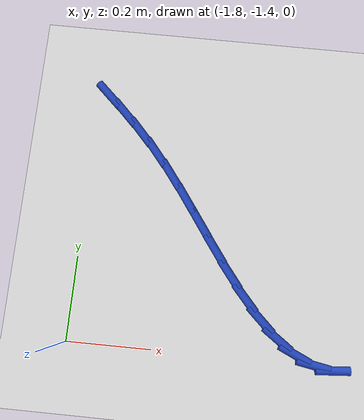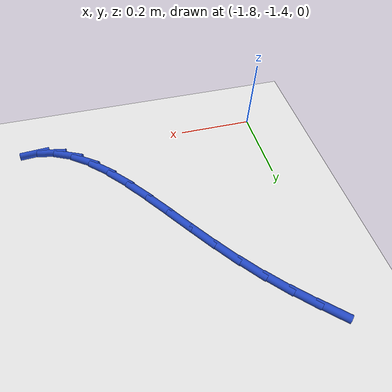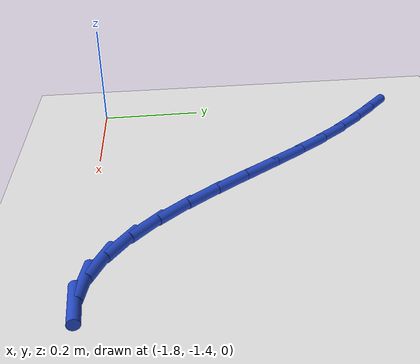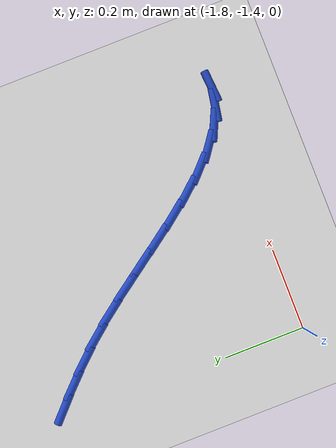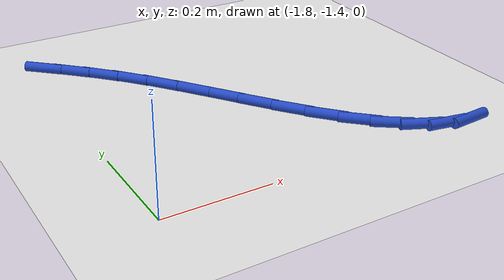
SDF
<sdf version="1.6">
 <world name="default">
  <model name="ground_plane">
   <static>1</static>
   <link name="link">
    <collision name="collision">
     <geometry><plane><normal>0 0 1</normal><size>100 100</size></plane></geometry>
     <surface><friction><ode><mu>100</mu><mu2>50</mu2></ode></friction></surface>
    </collision>
    <visual name="visual">
     <cast_shadows>0</cast_shadows>
     <geometry><plane><normal>0 0 1</normal><size>100 100</size></plane></geometry>
     <material>
      <script><uri>file://media/materials/scripts/gazebo.material</uri><name>Gazebo/WhiteGlow</name></script>
     </material>
    </visual>
   </link>
  </model>
  <model name="line">
   <link name="link_76">
    <pose>-1.772185459357427 -0.793745947863825 0.01 0 1.57 -0.7571948575195712</pose>
    <collision name="collision">
     <geometry><cylinder><radius>0.01</radius><length>0.08</length></cylinder></geometry>
    </collision>
    <visual name="visual">
     <material>
      <script><name>Gazebo/Blue</name><uri>file://media/materials/scripts/gazebo.material</uri></script>
     </material>
     <geometry><cylinder><radius>0.01</radius><length>0.08</length></cylinder></geometry>
    </visual>
   </link>
   <link name="link_77">
    <pose>-1.7273010542508556 -0.8361673864839738 0.01 0 1.57 -0.7916370631608858</pose>
    <collision name="collision">
     <geometry><cylinder><radius>0.01</radius><length>0.08</length></cylinder></geometry>
    </collision>
    <visual name="visual">
     <material>
      <script><name>Gazebo/Blue</name><uri>file://media/materials/scripts/gazebo.material</uri></script>
     </material>
     <geometry><cylinder><radius>0.01</radius><length>0.08</length></cylinder></geometry>
    </visual>
   </link>
   <link name="link_78">
    <pose>-1.6830461759627757 -0.8809779422975261 0.01 0 1.57 -0.8367730005441526</pose>
    <collision name="collision">
     <geometry><cylinder><radius>0.01</radius><length>0.08</length></cylinder></geometry>
    </collision>
    <visual name="visual">
     <material>
      <script><name>Gazebo/Blue</name><uri>file://media/materials/scripts/gazebo.material</uri></script>
     </material>
     <geometry><cylinder><radius>0.01</radius><length>0.08</length></cylinder></geometry>
    </visual>
   </link>
   <link name="link_79">
    <pose>-1.6396136082689707 -0.9291192461638587 0.01 0 1.57 -0.8891111600331657</pose>
    <collision name="collision">
     <geometry><cylinder><radius>0.01</radius><length>0.08</length></cylinder></geometry>
    </collision>
    <visual name="visual">
     <material>
      <script><name>Gazebo/Blue</name><uri>file://media/materials/scripts/gazebo.material</uri></script>
     </material>
     <geometry><cylinder><radius>0.01</radius><length>0.08</length></cylinder></geometry>
    </visual>
   </link>
   <link name="link_80">
    <pose>-1.5971764577105385 -0.9814170198711873 0.01 0 1.57 -0.9307369549955162</pose>
    <collision name="collision">
     <geometry><cylinder><radius>0.01</radius><length>0.08</length></cylinder></geometry>
    </collision>
    <visual name="visual">
     <material>
      <script><name>Gazebo/Blue</name><uri>file://media/materials/scripts/gazebo.material</uri></script>
     </material>
     <geometry><cylinder><radius>0.01</radius><length>0.08</length></cylinder></geometry>
    </visual>
   </link>
   <link name="link_81">
    <pose>-1.5556508629655545 -1.0371833118283136 0.01 0 1.57 -0.9526536617297064</pose>
    <collision name="collision">
     <geometry><cylinder><radius>0.01</radius><length>0.08</length></cylinder></geometry>
    </collision>
    <visual name="visual">
     <material>
      <script><name>Gazebo/Blue</name><uri>file://media/materials/scripts/gazebo.material</uri></script>
     </material>
     <geometry><cylinder><radius>0.01</radius><length>0.08</length></cylinder></geometry>
    </visual>
   </link>
   <link name="link_82">
    <pose>-1.5147727121256147 -1.0946684014307027 0.01 0 1.57 -0.9566198075054231</pose>
    <collision name="collision">
     <geometry><cylinder><radius>0.01</radius><length>0.08</length></cylinder></geometry>
    </collision>
    <visual name="visual">
     <material>
      <script><name>Gazebo/Blue</name><uri>file://media/materials/scripts/gazebo.material</uri></script>
     </material>
     <geometry><cylinder><radius>0.01</radius><length>0.08</length></cylinder></geometry>
    </visual>
   </link>
   <link name="link_83">
    <pose>-1.4742741668783335 -1.152100617630525 0.01 0 1.57 -0.9426491954464307</pose>
    <collision name="collision">
     <geometry><cylinder><radius>0.01</radius><length>0.08</length></cylinder></geometry>
    </collision>
    <visual name="visual">
     <material>
      <script><name>Gazebo/Blue</name><uri>file://media/materials/scripts/gazebo.material</uri></script>
     </material>
     <geometry><cylinder><radius>0.01</radius><length>0.08</length></cylinder></geometry>
    </visual>
   </link>
   <link name="link_84">
    <pose>-1.4338873889113268 -1.2077082893799524 0.01 0 1.57 -0.9086819468002343</pose>
    <collision name="collision">
     <geometry><cylinder><radius>0.01</radius><length>0.08</length></cylinder></geometry>
    </collision>
    <visual name="visual">
     <material>
      <script><name>Gazebo/Blue</name><uri>file://media/materials/scripts/gazebo.material</uri></script>
     </material>
     <geometry><cylinder><radius>0.01</radius><length>0.08</length></cylinder></geometry>
    </visual>
   </link>
   <link name="link_85">
    <pose>-1.3933445399122089 -1.2597197456311566 0.01 0 1.57 -0.8501038512805947</pose>
    <collision name="collision">
     <geometry><cylinder><radius>0.01</radius><length>0.08</length></cylinder></geometry>
    </collision>
    <visual name="visual">
     <material>
      <script><name>Gazebo/Blue</name><uri>file://media/materials/scripts/gazebo.material</uri></script>
     </material>
     <geometry><cylinder><radius>0.01</radius><length>0.08</length></cylinder></geometry>
    </visual>
   </link>
   <link name="link_86">
    <pose>-1.3523777815685956 -1.3063633153363066 0.01 0 1.57 -0.7588589665929028</pose>
    <collision name="collision">
     <geometry><cylinder><radius>0.01</radius><length>0.08</length></cylinder></geometry>
    </collision>
    <visual name="visual">
     <material>
      <script><name>Gazebo/Blue</name><uri>file://media/materials/scripts/gazebo.material</uri></script>
     </material>
     <geometry><cylinder><radius>0.01</radius><length>0.08</length></cylinder></geometry>
    </visual>
   </link>
   <link name="link_87">
    <pose>-1.310719275568102 -1.345867327447575 0.01 0 1.57 -0.622596139304134</pose>
    <collision name="collision">
     <geometry><cylinder><radius>0.01</radius><length>0.08</length></cylinder></geometry>
    </collision>
    <visual name="visual">
     <material>
      <script><name>Gazebo/Blue</name><uri>file://media/materials/scripts/gazebo.material</uri></script>
     </material>
     <geometry><cylinder><radius>0.01</radius><length>0.08</length></cylinder></geometry>
    </visual>
   </link>
   <link name="link_88">
    <pose>-1.2681011835983433 -1.3764601109171322 0.01 0 1.57 -0.4262513487085574</pose>
    <collision name="collision">
     <geometry><cylinder><radius>0.01</radius><length>0.08</length></cylinder></geometry>
    </collision>
    <visual name="visual">
     <material>
      <script><name>Gazebo/Blue</name><uri>file://media/materials/scripts/gazebo.material</uri></script>
     </material>
     <geometry><cylinder><radius>0.01</radius><length>0.08</length></cylinder></geometry>
    </visual>
   </link>
   <link name="link_89">
    <pose>-1.2242556673469338 -1.3963699946971495 0.01 0 1.57 -0.1734478274587454</pose>
    <collision name="collision">
     <geometry><cylinder><radius>0.01</radius><length>0.08</length></cylinder></geometry>
    </collision>
    <visual name="visual">
     <material>
      <script><name>Gazebo/Blue</name><uri>file://media/materials/scripts/gazebo.material</uri></script>
     </material>
     <geometry><cylinder><radius>0.01</radius><length>0.08</length></cylinder></geometry>
    </visual>
   </link>
   <link name="link_90">
    <pose>-1.1789828663273545 -1.4043021678965406 0.01 0 1.57 0.07296413793521855</pose>
    <collision name="collision">
     <geometry><cylinder><radius>0.01</radius><length>0.08</length></cylinder></geometry>
    </collision>
    <visual name="visual">
     <material>
      <script><name>Gazebo/Blue</name><uri>file://media/materials/scripts/gazebo.material</uri></script>
     </material>
     <geometry><cylinder><radius>0.01</radius><length>0.08</length></cylinder></geometry>
    </visual>
   </link>
  </model>
 </world>
</sdf>
